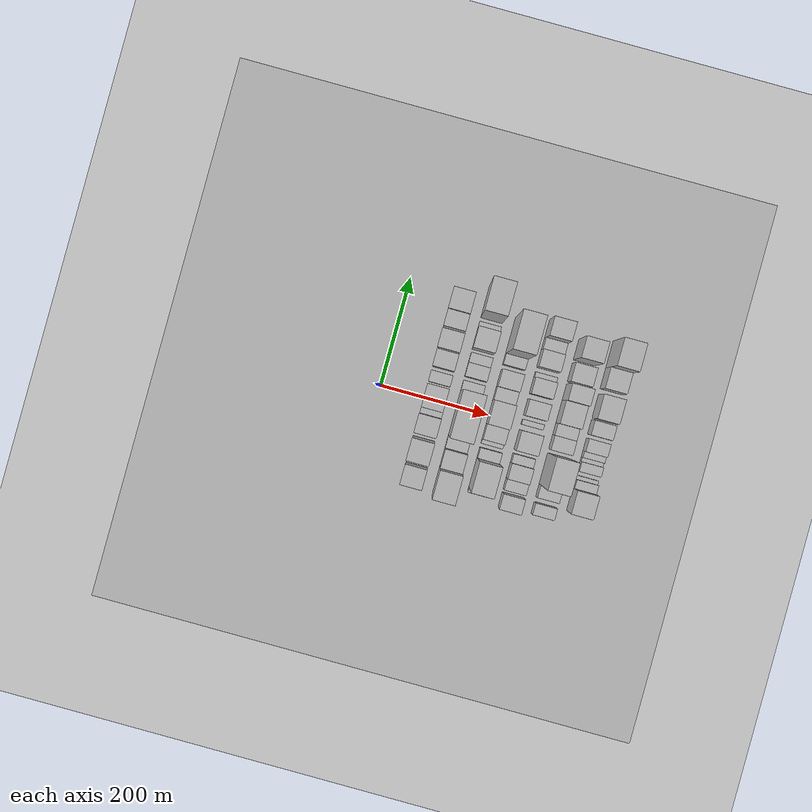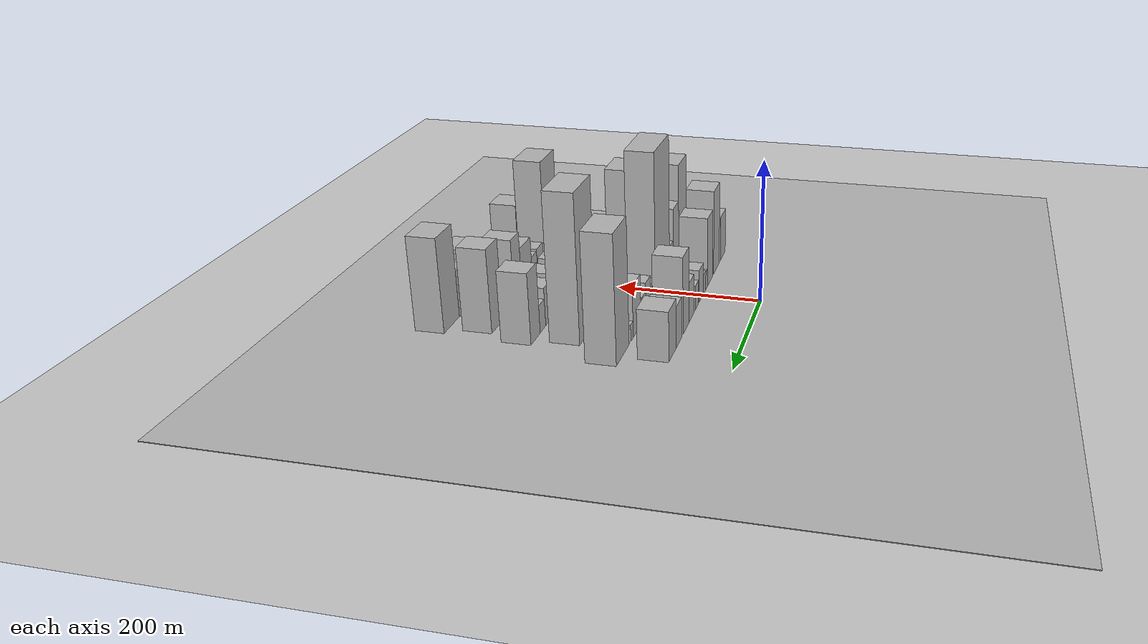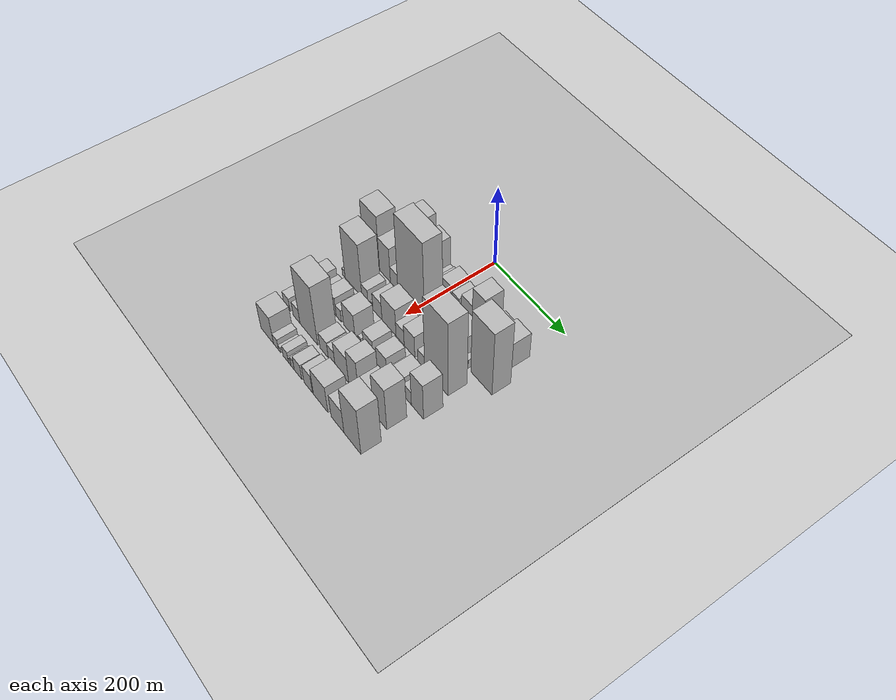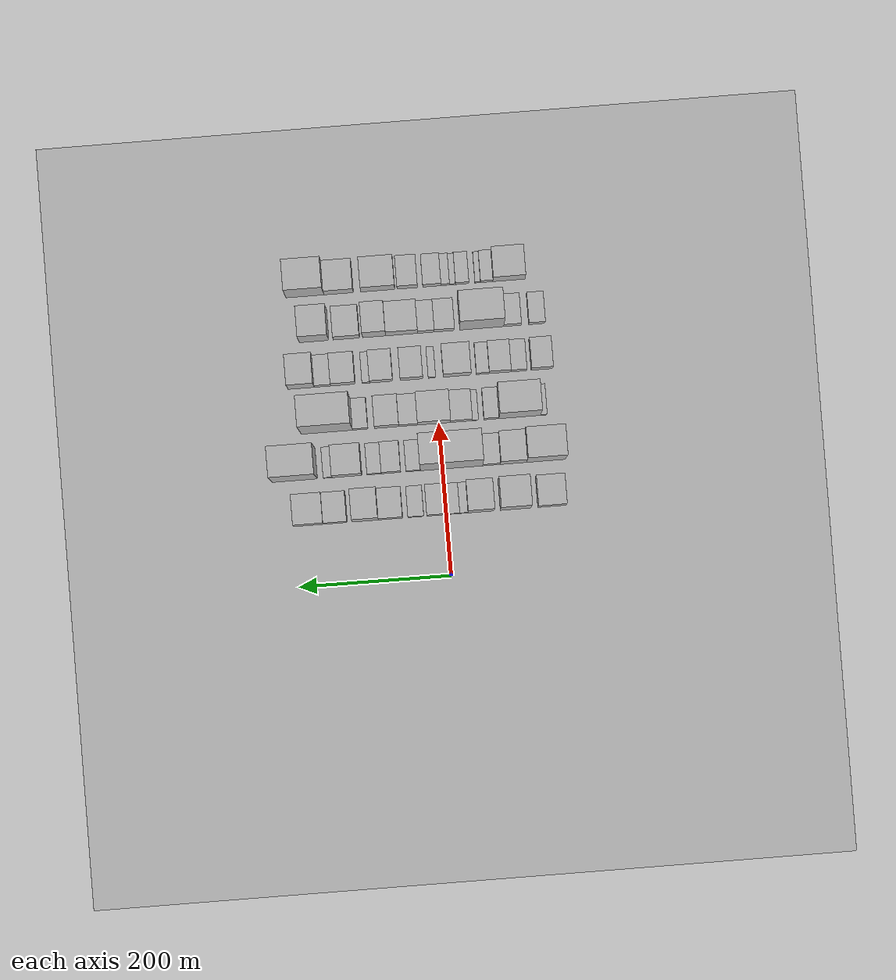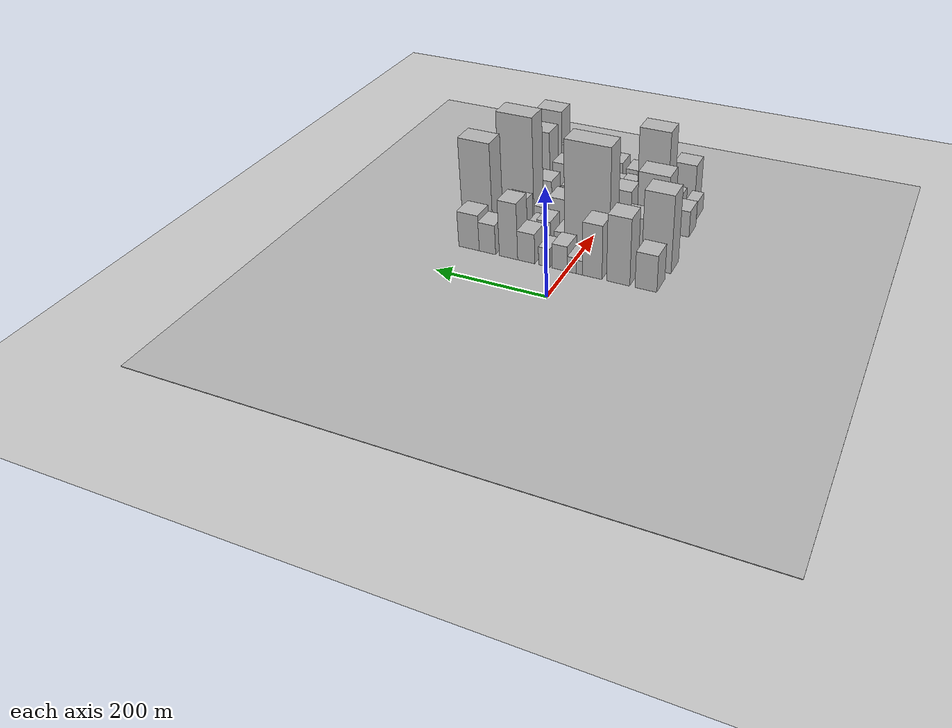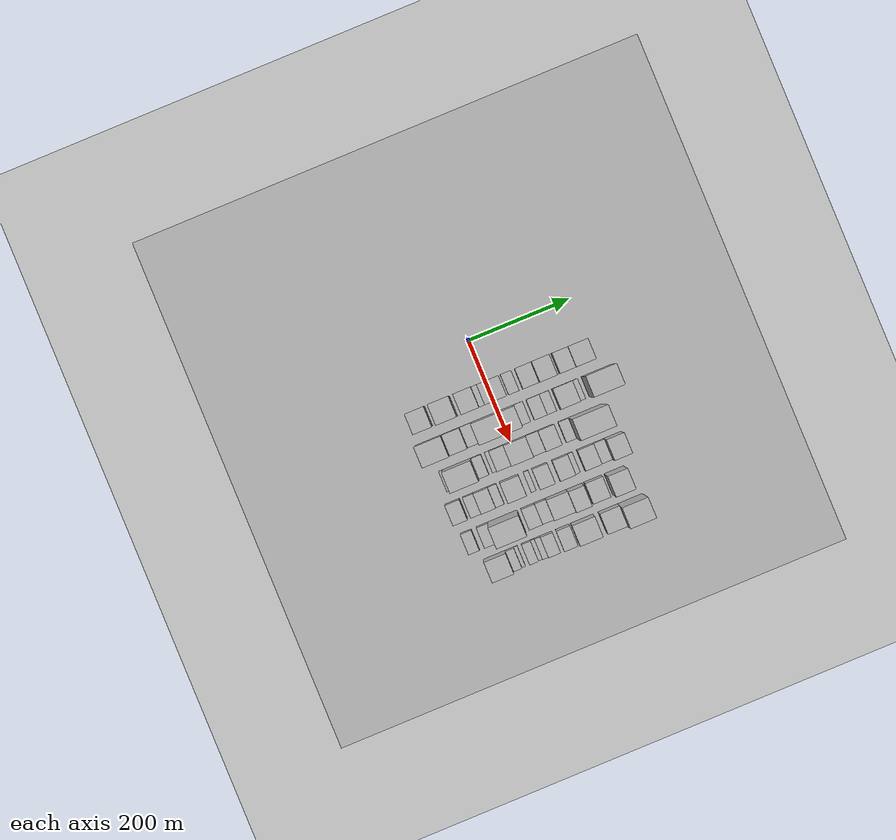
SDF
<sdf version="1.6">
 <world name="default">
  <include><name>ground_plane_1</name><uri>model://HANNAS_ground_plane</uri></include>
  <include>
   <name>ground_plane_2</name>
   <uri>model://HANNAS_ground_plane</uri>
   <pose>100 0 0  0 0 0</pose>
  </include>
  <model name="building_28">
   <static>1</static>
   <pose>100.0000 -138.4479 0 0.000000 0.000000 0.000000</pose>
   <link name="link">
    <pose>0 0 34.50 0 0 0</pose>
    <collision name="collision"><geometry><box><size>40.0000 37.1466 69.0000</size></box></geometry></collision>
    <visual name="visual">
     <cast_shadows>0</cast_shadows>
     <geometry><box><size>40.0000 37.1466 69.0000</size></box></geometry>
     <material>
      <script>
       <uri>model://HANNAS_wall/materials/scripts</uri>
       <uri>model://HANNAS_wall/materials/textures</uri>
       <name>vrc/HANNAS_wall</name>
      </script>
     </material>
    </visual>
   </link>
  </model>
  <model name="building_29">
   <static>1</static>
   <pose>100.0000 -90.7545 0 0.000000 0.000000 0.000000</pose>
   <link name="link">
    <pose>0 0 63.00 0 0 0</pose>
    <collision name="collision"><geometry><box><size>40.0000 40.2401 126.0000</size></box></geometry></collision>
    <visual name="visual">
     <cast_shadows>0</cast_shadows>
     <geometry><box><size>40.0000 40.2401 126.0000</size></box></geometry>
     <material>
      <script>
       <uri>model://HANNAS_wall/materials/scripts</uri>
       <uri>model://HANNAS_wall/materials/textures</uri>
       <name>vrc/HANNAS_wall</name>
      </script>
     </material>
    </visual>
   </link>
  </model>
  <model name="building_30">
   <static>1</static>
   <pose>100.0000 -45.3814 0 0.000000 0.000000 0.000000</pose>
   <link name="link">
    <pose>0 0 51.00 0 0 0</pose>
    <collision name="collision"><geometry><box><size>40.0000 34.5061 102.0000</size></box></geometry></collision>
    <visual name="visual">
     <cast_shadows>0</cast_shadows>
     <geometry><box><size>40.0000 34.5061 102.0000</size></box></geometry>
     <material>
      <script>
       <uri>model://HANNAS_wall/materials/scripts</uri>
       <uri>model://HANNAS_wall/materials/textures</uri>
       <name>vrc/HANNAS_wall</name>
      </script>
     </material>
    </visual>
   </link>
  </model>
  <model name="building_31">
   <static>1</static>
   <pose>100.0000 -22.7238 0 0.000000 0.000000 0.000000</pose>
   <link name="link">
    <pose>0 0 13.50 0 0 0</pose>
    <collision name="collision"><geometry><box><size>40.0000 10.8093 27.0000</size></box></geometry></collision>
    <visual name="visual">
     <cast_shadows>0</cast_shadows>
     <geometry><box><size>40.0000 10.8093 27.0000</size></box></geometry>
     <material>
      <script>
       <uri>model://HANNAS_wall/materials/scripts</uri>
       <uri>model://HANNAS_wall/materials/textures</uri>
       <name>vrc/HANNAS_wall</name>
      </script>
     </material>
    </visual>
   </link>
  </model>
  <model name="building_32">
   <static>1</static>
   <pose>100.0000 -9.4196 0 0.000000 0.000000 0.000000</pose>
   <link name="link">
    <pose>0 0 15.00 0 0 0</pose>
    <collision name="collision"><geometry><box><size>40.0000 15.7991 30.0000</size></box></geometry></collision>
    <visual name="visual">
     <cast_shadows>0</cast_shadows>
     <geometry><box><size>40.0000 15.7991 30.0000</size></box></geometry>
     <material>
      <script>
       <uri>model://HANNAS_wall/materials/scripts</uri>
       <uri>model://HANNAS_wall/materials/textures</uri>
       <name>vrc/HANNAS_wall</name>
      </script>
     </material>
    </visual>
   </link>
  </model>
  <model name="building_33">
   <static>1</static>
   <pose>100.0000 12.1515 0 0.000000 0.000000 0.000000</pose>
   <link name="link">
    <pose>0 0 24.00 0 0 0</pose>
    <collision name="collision"><geometry><box><size>40.0000 27.3430 48.0000</size></box></geometry></collision>
    <visual name="visual">
     <cast_shadows>0</cast_shadows>
     <geometry><box><size>40.0000 27.3430 48.0000</size></box></geometry>
     <material>
      <script>
       <uri>model://HANNAS_wall/materials/scripts</uri>
       <uri>model://HANNAS_wall/materials/textures</uri>
       <name>vrc/HANNAS_wall</name>
      </script>
     </material>
    </visual>
   </link>
  </model>
  <model name="building_34">
   <static>1</static>
   <pose>100.0000 40.2067 0 0.000000 0.000000 0.000000</pose>
   <link name="link">
    <pose>0 0 18.00 0 0 0</pose>
    <collision name="collision"><geometry><box><size>40.0000 20.7675 36.0000</size></box></geometry></collision>
    <visual name="visual">
     <cast_shadows>0</cast_shadows>
     <geometry><box><size>40.0000 20.7675 36.0000</size></box></geometry>
     <material>
      <script>
       <uri>model://HANNAS_wall/materials/scripts</uri>
       <uri>model://HANNAS_wall/materials/textures</uri>
       <name>vrc/HANNAS_wall</name>
      </script>
     </material>
    </visual>
   </link>
  </model>
  <model name="building_35">
   <static>1</static>
   <pose>100.0000 73.3706 0 0.000000 0.000000 0.000000</pose>
   <link name="link">
    <pose>0 0 28.50 0 0 0</pose>
    <collision name="collision"><geometry><box><size>40.0000 31.5603 57.0000</size></box></geometry></collision>
    <visual name="visual">
     <cast_shadows>0</cast_shadows>
     <geometry><box><size>40.0000 31.5603 57.0000</size></box></geometry>
     <material>
      <script>
       <uri>model://HANNAS_wall/materials/scripts</uri>
       <uri>model://HANNAS_wall/materials/textures</uri>
       <name>vrc/HANNAS_wall</name>
      </script>
     </material>
    </visual>
   </link>
  </model>
  <model name="building_36">
   <static>1</static>
   <pose>100.0000 106.2150 0 0.000000 0.000000 0.000000</pose>
   <link name="link">
    <pose>0 0 54.00 0 0 0</pose>
    <collision name="collision"><geometry><box><size>40.0000 34.1284 108.0000</size></box></geometry></collision>
    <visual name="visual">
     <cast_shadows>0</cast_shadows>
     <geometry><box><size>40.0000 34.1284 108.0000</size></box></geometry>
     <material>
      <script>
       <uri>model://HANNAS_wall/materials/scripts</uri>
       <uri>model://HANNAS_wall/materials/textures</uri>
       <name>vrc/HANNAS_wall</name>
      </script>
     </material>
    </visual>
   </link>
  </model>
  <model name="building_37">
   <static>1</static>
   <pose>100.0000 145.7247 0 0.000000 0.000000 0.000000</pose>
   <link name="link">
    <pose>0 0 28.50 0 0 0</pose>
    <collision name="collision"><geometry><box><size>40.0000 30.8910 57.0000</size></box></geometry></collision>
    <visual name="visual">
     <cast_shadows>0</cast_shadows>
     <geometry><box><size>40.0000 30.8910 57.0000</size></box></geometry>
     <material>
      <script>
       <uri>model://HANNAS_wall/materials/scripts</uri>
       <uri>model://HANNAS_wall/materials/textures</uri>
       <name>vrc/HANNAS_wall</name>
      </script>
     </material>
    </visual>
   </link>
  </model>
  <model name="building_38">
   <static>1</static>
   <pose>100.0000 180.6867 0 0.000000 0.000000 0.000000</pose>
   <link name="link">
    <pose>0 0 34.50 0 0 0</pose>
    <collision name="collision"><geometry><box><size>40.0000 39.0329 69.0000</size></box></geometry></collision>
    <visual name="visual">
     <cast_shadows>0</cast_shadows>
     <geometry><box><size>40.0000 39.0329 69.0000</size></box></geometry>
     <material>
      <script>
       <uri>model://HANNAS_wall/materials/scripts</uri>
       <uri>model://HANNAS_wall/materials/textures</uri>
       <name>vrc/HANNAS_wall</name>
      </script>
     </material>
    </visual>
   </link>
  </model>
  <model name="building_86">
   <static>1</static>
   <pose>160.0000 -135.2525 0 0.000000 0.000000 0.000000</pose>
   <link name="link">
    <pose>0 0 73.50 0 0 0</pose>
    <collision name="collision"><geometry><box><size>40.0000 51.1075 147.0000</size></box></geometry></collision>
    <visual name="visual">
     <cast_shadows>0</cast_shadows>
     <geometry><box><size>40.0000 51.1075 147.0000</size></box></geometry>
     <material>
      <script>
       <uri>model://HANNAS_wall/materials/scripts</uri>
       <uri>model://HANNAS_wall/materials/textures</uri>
       <name>vrc/HANNAS_wall</name>
      </script>
     </material>
    </visual>
   </link>
  </model>
  <model name="building_87">
   <static>1</static>
   <pose>160.0000 -92.5547 0 0.000000 0.000000 0.000000</pose>
   <link name="link">
    <pose>0 0 46.50 0 0 0</pose>
    <collision name="collision"><geometry><box><size>40.0000 34.2880 93.0000</size></box></geometry></collision>
    <visual name="visual">
     <cast_shadows>0</cast_shadows>
     <geometry><box><size>40.0000 34.2880 93.0000</size></box></geometry>
     <material>
      <script>
       <uri>model://HANNAS_wall/materials/scripts</uri>
       <uri>model://HANNAS_wall/materials/textures</uri>
       <name>vrc/HANNAS_wall</name>
      </script>
     </material>
    </visual>
   </link>
  </model>
  <model name="building_88">
   <static>1</static>
   <pose>160.0000 -63.7799 0 0.000000 0.000000 0.000000</pose>
   <link name="link">
    <pose>0 0 22.50 0 0 0</pose>
    <collision name="collision"><geometry><box><size>40.0000 23.2616 45.0000</size></box></geometry></collision>
    <visual name="visual">
     <cast_shadows>0</cast_shadows>
     <geometry><box><size>40.0000 23.2616 45.0000</size></box></geometry>
     <material>
      <script>
       <uri>model://HANNAS_wall/materials/scripts</uri>
       <uri>model://HANNAS_wall/materials/textures</uri>
       <name>vrc/HANNAS_wall</name>
      </script>
     </material>
    </visual>
   </link>
  </model>
  <model name="building_89">
   <static>1</static>
   <pose>160.0000 -11.2617 0 0.000000 0.000000 0.000000</pose>
   <link name="link">
    <pose>0 0 105.00 0 0 0</pose>
    <collision name="collision"><geometry><box><size>40.0000 81.7748 210.0000</size></box></geometry></collision>
    <visual name="visual">
     <cast_shadows>0</cast_shadows>
     <geometry><box><size>40.0000 81.7748 210.0000</size></box></geometry>
     <material>
      <script>
       <uri>model://HANNAS_wall/materials/scripts</uri>
       <uri>model://HANNAS_wall/materials/textures</uri>
       <name>vrc/HANNAS_wall</name>
      </script>
     </material>
    </visual>
   </link>
  </model>
  <model name="building_90">
   <static>1</static>
   <pose>160.0000 39.0484 0 0.000000 0.000000 0.000000</pose>
   <link name="link">
    <pose>0 0 16.50 0 0 0</pose>
    <collision name="collision"><geometry><box><size>40.0000 18.8454 33.0000</size></box></geometry></collision>
    <visual name="visual">
     <cast_shadows>0</cast_shadows>
     <geometry><box><size>40.0000 18.8454 33.0000</size></box></geometry>
     <material>
      <script>
       <uri>model://HANNAS_wall/materials/scripts</uri>
       <uri>model://HANNAS_wall/materials/textures</uri>
       <name>vrc/HANNAS_wall</name>
      </script>
     </material>
    </visual>
   </link>
  </model>
  <model name="building_91">
   <static>1</static>
   <pose>160.0000 68.0757 0 0.000000 0.000000 0.000000</pose>
   <link name="link">
    <pose>0 0 24.00 0 0 0</pose>
    <collision name="collision"><geometry><box><size>40.0000 25.2090 48.0000</size></box></geometry></collision>
    <visual name="visual">
     <cast_shadows>0</cast_shadows>
     <geometry><box><size>40.0000 25.2090 48.0000</size></box></geometry>
     <material>
      <script>
       <uri>model://HANNAS_wall/materials/scripts</uri>
       <uri>model://HANNAS_wall/materials/textures</uri>
       <name>vrc/HANNAS_wall</name>
      </script>
     </material>
    </visual>
   </link>
  </model>
  <model name="building_92">
   <static>1</static>
   <pose>160.0000 90.0440 0 0.000000 0.000000 0.000000</pose>
   <link name="link">
    <pose>0 0 18.00 0 0 0</pose>
    <collision name="collision"><geometry><box><size>40.0000 18.7275 36.0000</size></box></geometry></collision>
    <visual name="visual">
     <cast_shadows>0</cast_shadows>
     <geometry><box><size>40.0000 18.7275 36.0000</size></box></geometry>
     <material>
      <script>
       <uri>model://HANNAS_wall/materials/scripts</uri>
       <uri>model://HANNAS_wall/materials/textures</uri>
       <name>vrc/HANNAS_wall</name>
      </script>
     </material>
    </visual>
   </link>
  </model>
  <model name="building_93">
   <static>1</static>
   <pose>160.0000 125.8068 0 0.000000 0.000000 0.000000</pose>
   <link name="link">
    <pose>0 0 36.00 0 0 0</pose>
    <collision name="collision"><geometry><box><size>40.0000 38.7981 72.0000</size></box></geometry></collision>
    <visual name="visual">
     <cast_shadows>0</cast_shadows>
     <geometry><box><size>40.0000 38.7981 72.0000</size></box></geometry>
     <material>
      <script>
       <uri>model://HANNAS_wall/materials/scripts</uri>
       <uri>model://HANNAS_wall/materials/textures</uri>
       <name>vrc/HANNAS_wall</name>
      </script>
     </material>
    </visual>
   </link>
  </model>
  <model name="building_94">
   <static>1</static>
   <pose>160.0000 151.0889 0 0.000000 0.000000 0.000000</pose>
   <link name="link">
    <pose>0 0 12.00 0 0 0</pose>
    <collision name="collision"><geometry><box><size>40.0000 11.7660 24.0000</size></box></geometry></collision>
    <visual name="visual">
     <cast_shadows>0</cast_shadows>
     <geometry><box><size>40.0000 11.7660 24.0000</size></box></geometry>
     <material>
      <script>
       <uri>model://HANNAS_wall/materials/scripts</uri>
       <uri>model://HANNAS_wall/materials/textures</uri>
       <name>vrc/HANNAS_wall</name>
      </script>
     </material>
    </visual>
   </link>
  </model>
  <model name="building_95">
   <static>1</static>
   <pose>160.0000 194.3535 0 0.000000 0.000000 0.000000</pose>
   <link name="link">
    <pose>0 0 87.00 0 0 0</pose>
    <collision name="collision"><geometry><box><size>40.0000 58.7632 174.0000</size></box></geometry></collision>
    <visual name="visual">
     <cast_shadows>0</cast_shadows>
     <geometry><box><size>40.0000 58.7632 174.0000</size></box></geometry>
     <material>
      <script>
       <uri>model://HANNAS_wall/materials/scripts</uri>
       <uri>model://HANNAS_wall/materials/textures</uri>
       <name>vrc/HANNAS_wall</name>
      </script>
     </material>
    </visual>
   </link>
  </model>
  <model name="building_138">
   <static>1</static>
   <pose>220.0000 -137.1860 0 0.000000 0.000000 0.000000</pose>
   <link name="link">
    <pose>0 0 10.50 0 0 0</pose>
    <collision name="collision"><geometry><box><size>40.0000 8.5408 21.0000</size></box></geometry></collision>
    <visual name="visual">
     <cast_shadows>0</cast_shadows>
     <geometry><box><size>40.0000 8.5408 21.0000</size></box></geometry>
     <material>
      <script>
       <uri>model://HANNAS_wall/materials/scripts</uri>
       <uri>model://HANNAS_wall/materials/textures</uri>
       <name>vrc/HANNAS_wall</name>
      </script>
     </material>
    </visual>
   </link>
  </model>
  <model name="building_139">
   <static>1</static>
   <pose>220.0000 -105.5557 0 0.000000 0.000000 0.000000</pose>
   <link name="link">
    <pose>0 0 72.00 0 0 0</pose>
    <collision name="collision"><geometry><box><size>40.0000 54.7197 144.0000</size></box></geometry></collision>
    <visual name="visual">
     <cast_shadows>0</cast_shadows>
     <geometry><box><size>40.0000 54.7197 144.0000</size></box></geometry>
     <material>
      <script>
       <uri>model://HANNAS_wall/materials/scripts</uri>
       <uri>model://HANNAS_wall/materials/textures</uri>
       <name>vrc/HANNAS_wall</name>
      </script>
     </material>
    </visual>
   </link>
  </model>
  <model name="building_140">
   <static>1</static>
   <pose>220.0000 -68.3398 0 0.000000 0.000000 0.000000</pose>
   <link name="link">
    <pose>0 0 19.50 0 0 0</pose>
    <collision name="collision"><geometry><box><size>40.0000 19.7121 39.0000</size></box></geometry></collision>
    <visual name="visual">
     <cast_shadows>0</cast_shadows>
     <geometry><box><size>40.0000 19.7121 39.0000</size></box></geometry>
     <material>
      <script>
       <uri>model://HANNAS_wall/materials/scripts</uri>
       <uri>model://HANNAS_wall/materials/textures</uri>
       <name>vrc/HANNAS_wall</name>
      </script>
     </material>
    </visual>
   </link>
  </model>
  <model name="building_141">
   <static>1</static>
   <pose>220.0000 -47.3592 0 0.000000 0.000000 0.000000</pose>
   <link name="link">
    <pose>0 0 9.00 0 0 0</pose>
    <collision name="collision"><geometry><box><size>40.0000 8.2490 18.0000</size></box></geometry></collision>
    <visual name="visual">
     <cast_shadows>0</cast_shadows>
     <geometry><box><size>40.0000 8.2490 18.0000</size></box></geometry>
     <material>
      <script>
       <uri>model://HANNAS_wall/materials/scripts</uri>
       <uri>model://HANNAS_wall/materials/textures</uri>
       <name>vrc/HANNAS_wall</name>
      </script>
     </material>
    </visual>
   </link>
  </model>
  <model name="building_142">
   <static>1</static>
   <pose>220.0000 -29.0411 0 0.000000 0.000000 0.000000</pose>
   <link name="link">
    <pose>0 0 24.00 0 0 0</pose>
    <collision name="collision"><geometry><box><size>40.0000 28.3872 48.0000</size></box></geometry></collision>
    <visual name="visual">
     <cast_shadows>0</cast_shadows>
     <geometry><box><size>40.0000 28.3872 48.0000</size></box></geometry>
     <material>
      <script>
       <uri>model://HANNAS_wall/materials/scripts</uri>
       <uri>model://HANNAS_wall/materials/textures</uri>
       <name>vrc/HANNAS_wall</name>
      </script>
     </material>
    </visual>
   </link>
  </model>
  <model name="building_143">
   <static>1</static>
   <pose>220.0000 6.8665 0 0.000000 0.000000 0.000000</pose>
   <link name="link">
    <pose>0 0 37.50 0 0 0</pose>
    <collision name="collision"><geometry><box><size>40.0000 43.4281 75.0000</size></box></geometry></collision>
    <visual name="visual">
     <cast_shadows>0</cast_shadows>
     <geometry><box><size>40.0000 43.4281 75.0000</size></box></geometry>
     <material>
      <script>
       <uri>model://HANNAS_wall/materials/scripts</uri>
       <uri>model://HANNAS_wall/materials/textures</uri>
       <name>vrc/HANNAS_wall</name>
      </script>
     </material>
    </visual>
   </link>
  </model>
  <model name="building_144">
   <static>1</static>
   <pose>220.0000 40.8309 0 0.000000 0.000000 0.000000</pose>
   <link name="link">
    <pose>0 0 21.00 0 0 0</pose>
    <collision name="collision"><geometry><box><size>40.0000 24.5007 42.0000</size></box></geometry></collision>
    <visual name="visual">
     <cast_shadows>0</cast_shadows>
     <geometry><box><size>40.0000 24.5007 42.0000</size></box></geometry>
     <material>
      <script>
       <uri>model://HANNAS_wall/materials/scripts</uri>
       <uri>model://HANNAS_wall/materials/textures</uri>
       <name>vrc/HANNAS_wall</name>
      </script>
     </material>
    </visual>
   </link>
  </model>
  <model name="building_145">
   <static>1</static>
   <pose>220.0000 68.9555 0 0.000000 0.000000 0.000000</pose>
   <link name="link">
    <pose>0 0 30.00 0 0 0</pose>
    <collision name="collision"><geometry><box><size>40.0000 31.7485 60.0000</size></box></geometry></collision>
    <visual name="visual">
     <cast_shadows>0</cast_shadows>
     <geometry><box><size>40.0000 31.7485 60.0000</size></box></geometry>
     <material>
      <script>
       <uri>model://HANNAS_wall/materials/scripts</uri>
       <uri>model://HANNAS_wall/materials/textures</uri>
       <name>vrc/HANNAS_wall</name>
      </script>
     </material>
    </visual>
   </link>
  </model>
  <model name="building_146">
   <static>1</static>
   <pose>220.0000 103.7662 0 0.000000 0.000000 0.000000</pose>
   <link name="link">
    <pose>0 0 18.00 0 0 0</pose>
    <collision name="collision"><geometry><box><size>40.0000 19.8728 36.0000</size></box></geometry></collision>
    <visual name="visual">
     <cast_shadows>0</cast_shadows>
     <geometry><box><size>40.0000 19.8728 36.0000</size></box></geometry>
     <material>
      <script>
       <uri>model://HANNAS_wall/materials/scripts</uri>
       <uri>model://HANNAS_wall/materials/textures</uri>
       <name>vrc/HANNAS_wall</name>
      </script>
     </material>
    </visual>
   </link>
  </model>
  <model name="building_147">
   <static>1</static>
   <pose>220.0000 147.4147 0 0.000000 0.000000 0.000000</pose>
   <link name="link">
    <pose>0 0 102.00 0 0 0</pose>
    <collision name="collision"><geometry><box><size>40.0000 67.4244 204.0000</size></box></geometry></collision>
    <visual name="visual">
     <cast_shadows>0</cast_shadows>
     <geometry><box><size>40.0000 67.4244 204.0000</size></box></geometry>
     <material>
      <script>
       <uri>model://HANNAS_wall/materials/scripts</uri>
       <uri>model://HANNAS_wall/materials/textures</uri>
       <name>vrc/HANNAS_wall</name>
      </script>
     </material>
    </visual>
   </link>
  </model>
  <model name="building_187">
   <static>1</static>
   <pose>280.0000 -139.5482 0 0.000000 0.000000 0.000000</pose>
   <link name="link">
    <pose>0 0 25.50 0 0 0</pose>
    <collision name="collision"><geometry><box><size>40.0000 28.2880 51.0000</size></box></geometry></collision>
    <visual name="visual">
     <cast_shadows>0</cast_shadows>
     <geometry><box><size>40.0000 28.2880 51.0000</size></box></geometry>
     <material>
      <script>
       <uri>model://HANNAS_wall/materials/scripts</uri>
       <uri>model://HANNAS_wall/materials/textures</uri>
       <name>vrc/HANNAS_wall</name>
      </script>
     </material>
    </visual>
   </link>
  </model>
  <model name="building_188">
   <static>1</static>
   <pose>280.0000 -109.0311 0 0.000000 0.000000 0.000000</pose>
   <link name="link">
    <pose>0 0 19.50 0 0 0</pose>
    <collision name="collision"><geometry><box><size>40.0000 20.7461 39.0000</size></box></geometry></collision>
    <visual name="visual">
     <cast_shadows>0</cast_shadows>
     <geometry><box><size>40.0000 20.7461 39.0000</size></box></geometry>
     <material>
      <script>
       <uri>model://HANNAS_wall/materials/scripts</uri>
       <uri>model://HANNAS_wall/materials/textures</uri>
       <name>vrc/HANNAS_wall</name>
      </script>
     </material>
    </visual>
   </link>
  </model>
  <model name="building_189">
   <static>1</static>
   <pose>280.0000 -84.3676 0 0.000000 0.000000 0.000000</pose>
   <link name="link">
    <pose>0 0 25.50 0 0 0</pose>
    <collision name="collision"><geometry><box><size>40.0000 28.5811 51.0000</size></box></geometry></collision>
    <visual name="visual">
     <cast_shadows>0</cast_shadows>
     <geometry><box><size>40.0000 28.5811 51.0000</size></box></geometry>
     <material>
      <script>
       <uri>model://HANNAS_wall/materials/scripts</uri>
       <uri>model://HANNAS_wall/materials/textures</uri>
       <name>vrc/HANNAS_wall</name>
      </script>
     </material>
    </visual>
   </link>
  </model>
  <model name="building_190">
   <static>1</static>
   <pose>280.0000 -61.6825 0 0.000000 0.000000 0.000000</pose>
   <link name="link">
    <pose>0 0 16.50 0 0 0</pose>
    <collision name="collision"><geometry><box><size>40.0000 16.7892 33.0000</size></box></geometry></collision>
    <visual name="visual">
     <cast_shadows>0</cast_shadows>
     <geometry><box><size>40.0000 16.7892 33.0000</size></box></geometry>
     <material>
      <script>
       <uri>model://HANNAS_wall/materials/scripts</uri>
       <uri>model://HANNAS_wall/materials/textures</uri>
       <name>vrc/HANNAS_wall</name>
      </script>
     </material>
    </visual>
   </link>
  </model>
  <model name="building_191">
   <static>1</static>
   <pose>280.0000 -28.0726 0 0.000000 0.000000 0.000000</pose>
   <link name="link">
    <pose>0 0 33.00 0 0 0</pose>
    <collision name="collision"><geometry><box><size>40.0000 36.4304 66.0000</size></box></geometry></collision>
    <visual name="visual">
     <cast_shadows>0</cast_shadows>
     <geometry><box><size>40.0000 36.4304 66.0000</size></box></geometry>
     <material>
      <script>
       <uri>model://HANNAS_wall/materials/scripts</uri>
       <uri>model://HANNAS_wall/materials/textures</uri>
       <name>vrc/HANNAS_wall</name>
      </script>
     </material>
    </visual>
   </link>
  </model>
  <model name="building_192">
   <static>1</static>
   <pose>280.0000 5.0324 0 0.000000 0.000000 0.000000</pose>
   <link name="link">
    <pose>0 0 10.50 0 0 0</pose>
    <collision name="collision"><geometry><box><size>40.0000 9.7797 21.0000</size></box></geometry></collision>
    <visual name="visual">
     <cast_shadows>0</cast_shadows>
     <geometry><box><size>40.0000 9.7797 21.0000</size></box></geometry>
     <material>
      <script>
       <uri>model://HANNAS_wall/materials/scripts</uri>
       <uri>model://HANNAS_wall/materials/textures</uri>
       <name>vrc/HANNAS_wall</name>
      </script>
     </material>
    </visual>
   </link>
  </model>
  <model name="building_193">
   <static>1</static>
   <pose>280.0000 31.7453 0 0.000000 0.000000 0.000000</pose>
   <link name="link">
    <pose>0 0 27.00 0 0 0</pose>
    <collision name="collision"><geometry><box><size>40.0000 29.6462 54.0000</size></box></geometry></collision>
    <visual name="visual">
     <cast_shadows>0</cast_shadows>
     <geometry><box><size>40.0000 29.6462 54.0000</size></box></geometry>
     <material>
      <script>
       <uri>model://HANNAS_wall/materials/scripts</uri>
       <uri>model://HANNAS_wall/materials/textures</uri>
       <name>vrc/HANNAS_wall</name>
      </script>
     </material>
    </visual>
   </link>
  </model>
  <model name="building_194">
   <static>1</static>
   <pose>280.0000 71.7087 0 0.000000 0.000000 0.000000</pose>
   <link name="link">
    <pose>0 0 25.50 0 0 0</pose>
    <collision name="collision"><geometry><box><size>40.0000 30.2806 51.0000</size></box></geometry></collision>
    <visual name="visual">
     <cast_shadows>0</cast_shadows>
     <geometry><box><size>40.0000 30.2806 51.0000</size></box></geometry>
     <material>
      <script>
       <uri>model://HANNAS_wall/materials/scripts</uri>
       <uri>model://HANNAS_wall/materials/textures</uri>
       <name>vrc/HANNAS_wall</name>
      </script>
     </material>
    </visual>
   </link>
  </model>
  <model name="building_195">
   <static>1</static>
   <pose>280.0000 91.8121 0 0.000000 0.000000 0.000000</pose>
   <link name="link">
    <pose>0 0 12.00 0 0 0</pose>
    <collision name="collision"><geometry><box><size>40.0000 9.9261 24.0000</size></box></geometry></collision>
    <visual name="visual">
     <cast_shadows>0</cast_shadows>
     <geometry><box><size>40.0000 9.9261 24.0000</size></box></geometry>
     <material>
      <script>
       <uri>model://HANNAS_wall/materials/scripts</uri>
       <uri>model://HANNAS_wall/materials/textures</uri>
       <name>vrc/HANNAS_wall</name>
      </script>
     </material>
    </visual>
   </link>
  </model>
  <model name="building_196">
   <static>1</static>
   <pose>280.0000 121.7684 0 0.000000 0.000000 0.000000</pose>
   <link name="link">
    <pose>0 0 27.00 0 0 0</pose>
    <collision name="collision"><geometry><box><size>40.0000 31.9866 54.0000</size></box></geometry></collision>
    <visual name="visual">
     <cast_shadows>0</cast_shadows>
     <geometry><box><size>40.0000 31.9866 54.0000</size></box></geometry>
     <material>
      <script>
       <uri>model://HANNAS_wall/materials/scripts</uri>
       <uri>model://HANNAS_wall/materials/textures</uri>
       <name>vrc/HANNAS_wall</name>
      </script>
     </material>
    </visual>
   </link>
  </model>
  <model name="building_197">
   <static>1</static>
   <pose>280.0000 148.5309 0 0.000000 0.000000 0.000000</pose>
   <link name="link">
    <pose>0 0 19.50 0 0 0</pose>
    <collision name="collision"><geometry><box><size>40.0000 21.5385 39.0000</size></box></geometry></collision>
    <visual name="visual">
     <cast_shadows>0</cast_shadows>
     <geometry><box><size>40.0000 21.5385 39.0000</size></box></geometry>
     <material>
      <script>
       <uri>model://HANNAS_wall/materials/scripts</uri>
       <uri>model://HANNAS_wall/materials/textures</uri>
       <name>vrc/HANNAS_wall</name>
      </script>
     </material>
    </visual>
   </link>
  </model>
  <model name="building_198">
   <static>1</static>
   <pose>280.0000 176.6526 0 0.000000 0.000000 0.000000</pose>
   <link name="link">
    <pose>0 0 49.50 0 0 0</pose>
    <collision name="collision"><geometry><box><size>40.0000 34.7049 99.0000</size></box></geometry></collision>
    <visual name="visual">
     <cast_shadows>0</cast_shadows>
     <geometry><box><size>40.0000 34.7049 99.0000</size></box></geometry>
     <material>
      <script>
       <uri>model://HANNAS_wall/materials/scripts</uri>
       <uri>model://HANNAS_wall/materials/textures</uri>
       <name>vrc/HANNAS_wall</name>
      </script>
     </material>
    </visual>
   </link>
  </model>
  <model name="building_240">
   <static>1</static>
   <pose>340.0000 -137.6462 0 0.000000 0.000000 0.000000</pose>
   <link name="link">
    <pose>0 0 18.00 0 0 0</pose>
    <collision name="collision"><geometry><box><size>40.0000 21.4775 36.0000</size></box></geometry></collision>
    <visual name="visual">
     <cast_shadows>0</cast_shadows>
     <geometry><box><size>40.0000 21.4775 36.0000</size></box></geometry>
     <material>
      <script>
       <uri>model://HANNAS_wall/materials/scripts</uri>
       <uri>model://HANNAS_wall/materials/textures</uri>
       <name>vrc/HANNAS_wall</name>
      </script>
     </material>
    </visual>
   </link>
  </model>
  <model name="building_241">
   <static>1</static>
   <pose>340.0000 -105.4870 0 0.000000 0.000000 0.000000</pose>
   <link name="link">
    <pose>0 0 19.50 0 0 0</pose>
    <collision name="collision"><geometry><box><size>40.0000 22.8408 39.0000</size></box></geometry></collision>
    <visual name="visual">
     <cast_shadows>0</cast_shadows>
     <geometry><box><size>40.0000 22.8408 39.0000</size></box></geometry>
     <material>
      <script>
       <uri>model://HANNAS_wall/materials/scripts</uri>
       <uri>model://HANNAS_wall/materials/textures</uri>
       <name>vrc/HANNAS_wall</name>
      </script>
     </material>
    </visual>
   </link>
  </model>
  <model name="building_242">
   <static>1</static>
   <pose>340.0000 -65.1874 0 0.000000 0.000000 0.000000</pose>
   <link name="link">
    <pose>0 0 81.00 0 0 0</pose>
    <collision name="collision"><geometry><box><size>40.0000 57.7582 162.0000</size></box></geometry></collision>
    <visual name="visual">
     <cast_shadows>0</cast_shadows>
     <geometry><box><size>40.0000 57.7582 162.0000</size></box></geometry>
     <material>
      <script>
       <uri>model://HANNAS_wall/materials/scripts</uri>
       <uri>model://HANNAS_wall/materials/textures</uri>
       <name>vrc/HANNAS_wall</name>
      </script>
     </material>
    </visual>
   </link>
  </model>
  <model name="building_243">
   <static>1</static>
   <pose>340.0000 -16.0661 0 0.000000 0.000000 0.000000</pose>
   <link name="link">
    <pose>0 0 22.50 0 0 0</pose>
    <collision name="collision"><geometry><box><size>40.0000 26.4844 45.0000</size></box></geometry></collision>
    <visual name="visual">
     <cast_shadows>0</cast_shadows>
     <geometry><box><size>40.0000 26.4844 45.0000</size></box></geometry>
     <material>
      <script>
       <uri>model://HANNAS_wall/materials/scripts</uri>
       <uri>model://HANNAS_wall/materials/textures</uri>
       <name>vrc/HANNAS_wall</name>
      </script>
     </material>
    </visual>
   </link>
  </model>
  <model name="building_244">
   <static>1</static>
   <pose>340.0000 8.1431 0 0.000000 0.000000 0.000000</pose>
   <link name="link">
    <pose>0 0 21.00 0 0 0</pose>
    <collision name="collision"><geometry><box><size>40.0000 21.9340 42.0000</size></box></geometry></collision>
    <visual name="visual">
     <cast_shadows>0</cast_shadows>
     <geometry><box><size>40.0000 21.9340 42.0000</size></box></geometry>
     <material>
      <script>
       <uri>model://HANNAS_wall/materials/scripts</uri>
       <uri>model://HANNAS_wall/materials/textures</uri>
       <name>vrc/HANNAS_wall</name>
      </script>
     </material>
    </visual>
   </link>
  </model>
  <model name="building_245">
   <static>1</static>
   <pose>340.0000 40.0120 0 0.000000 0.000000 0.000000</pose>
   <link name="link">
    <pose>0 0 36.00 0 0 0</pose>
    <collision name="collision"><geometry><box><size>40.0000 41.8036 72.0000</size></box></geometry></collision>
    <visual name="visual">
     <cast_shadows>0</cast_shadows>
     <geometry><box><size>40.0000 41.8036 72.0000</size></box></geometry>
     <material>
      <script>
       <uri>model://HANNAS_wall/materials/scripts</uri>
       <uri>model://HANNAS_wall/materials/textures</uri>
       <name>vrc/HANNAS_wall</name>
      </script>
     </material>
    </visual>
   </link>
  </model>
  <model name="building_246">
   <static>1</static>
   <pose>340.0000 76.1446 0 0.000000 0.000000 0.000000</pose>
   <link name="link">
    <pose>0 0 48.00 0 0 0</pose>
    <collision name="collision"><geometry><box><size>40.0000 30.4616 96.0000</size></box></geometry></collision>
    <visual name="visual">
     <cast_shadows>0</cast_shadows>
     <geometry><box><size>40.0000 30.4616 96.0000</size></box></geometry>
     <material>
      <script>
       <uri>model://HANNAS_wall/materials/scripts</uri>
       <uri>model://HANNAS_wall/materials/textures</uri>
       <name>vrc/HANNAS_wall</name>
      </script>
     </material>
    </visual>
   </link>
  </model>
  <model name="building_247">
   <static>1</static>
   <pose>340.0000 112.6431 0 0.000000 0.000000 0.000000</pose>
   <link name="link">
    <pose>0 0 30.00 0 0 0</pose>
    <collision name="collision"><geometry><box><size>40.0000 34.5355 60.0000</size></box></geometry></collision>
    <visual name="visual">
     <cast_shadows>0</cast_shadows>
     <geometry><box><size>40.0000 34.5355 60.0000</size></box></geometry>
     <material>
      <script>
       <uri>model://HANNAS_wall/materials/scripts</uri>
       <uri>model://HANNAS_wall/materials/textures</uri>
       <name>vrc/HANNAS_wall</name>
      </script>
     </material>
    </visual>
   </link>
  </model>
  <model name="building_248">
   <static>1</static>
   <pose>340.0000 155.1214 0 0.000000 0.000000 0.000000</pose>
   <link name="link">
    <pose>0 0 58.50 0 0 0</pose>
    <collision name="collision"><geometry><box><size>40.0000 38.4211 117.0000</size></box></geometry></collision>
    <visual name="visual">
     <cast_shadows>0</cast_shadows>
     <geometry><box><size>40.0000 38.4211 117.0000</size></box></geometry>
     <material>
      <script>
       <uri>model://HANNAS_wall/materials/scripts</uri>
       <uri>model://HANNAS_wall/materials/textures</uri>
       <name>vrc/HANNAS_wall</name>
      </script>
     </material>
    </visual>
   </link>
  </model>
  <model name="building_286">
   <static>1</static>
   <pose>400.0000 -105.6823 0 0.000000 0.000000 0.000000</pose>
   <link name="link">
    <pose>0 0 37.50 0 0 0</pose>
    <collision name="collision"><geometry><box><size>40.0000 42.2918 75.0000</size></box></geometry></collision>
    <visual name="visual">
     <cast_shadows>0</cast_shadows>
     <geometry><box><size>40.0000 42.2918 75.0000</size></box></geometry>
     <material>
      <script>
       <uri>model://HANNAS_wall/materials/scripts</uri>
       <uri>model://HANNAS_wall/materials/textures</uri>
       <name>vrc/HANNAS_wall</name>
      </script>
     </material>
    </visual>
   </link>
  </model>
  <model name="building_287">
   <static>1</static>
   <pose>400.0000 -76.3337 0 0.000000 0.000000 0.000000</pose>
   <link name="link">
    <pose>0 0 15.00 0 0 0</pose>
    <collision name="collision"><geometry><box><size>40.0000 16.4054 30.0000</size></box></geometry></collision>
    <visual name="visual">
     <cast_shadows>0</cast_shadows>
     <geometry><box><size>40.0000 16.4054 30.0000</size></box></geometry>
     <material>
      <script>
       <uri>model://HANNAS_wall/materials/scripts</uri>
       <uri>model://HANNAS_wall/materials/textures</uri>
       <name>vrc/HANNAS_wall</name>
      </script>
     </material>
    </visual>
   </link>
  </model>
  <model name="building_288">
   <static>1</static>
   <pose>400.0000 -64.5480 0 0.000000 0.000000 0.000000</pose>
   <link name="link">
    <pose>0 0 7.50 0 0 0</pose>
    <collision name="collision"><geometry><box><size>40.0000 7.1660 15.0000</size></box></geometry></collision>
    <visual name="visual">
     <cast_shadows>0</cast_shadows>
     <geometry><box><size>40.0000 7.1660 15.0000</size></box></geometry>
     <material>
      <script>
       <uri>model://HANNAS_wall/materials/scripts</uri>
       <uri>model://HANNAS_wall/materials/textures</uri>
       <name>vrc/HANNAS_wall</name>
      </script>
     </material>
    </visual>
   </link>
  </model>
  <model name="building_289">
   <static>1</static>
   <pose>400.0000 -44.1342 0 0.000000 0.000000 0.000000</pose>
   <link name="link">
    <pose>0 0 15.00 0 0 0</pose>
    <collision name="collision"><geometry><box><size>40.0000 17.6616 30.0000</size></box></geometry></collision>
    <visual name="visual">
     <cast_shadows>0</cast_shadows>
     <geometry><box><size>40.0000 17.6616 30.0000</size></box></geometry>
     <material>
      <script>
       <uri>model://HANNAS_wall/materials/scripts</uri>
       <uri>model://HANNAS_wall/materials/textures</uri>
       <name>vrc/HANNAS_wall</name>
      </script>
     </material>
    </visual>
   </link>
  </model>
  <model name="building_290">
   <static>1</static>
   <pose>400.0000 -31.4032 0 0.000000 0.000000 0.000000</pose>
   <link name="link">
    <pose>0 0 9.00 0 0 0</pose>
    <collision name="collision"><geometry><box><size>40.0000 7.8005 18.0000</size></box></geometry></collision>
    <visual name="visual">
     <cast_shadows>0</cast_shadows>
     <geometry><box><size>40.0000 7.8005 18.0000</size></box></geometry>
     <material>
      <script>
       <uri>model://HANNAS_wall/materials/scripts</uri>
       <uri>model://HANNAS_wall/materials/textures</uri>
       <name>vrc/HANNAS_wall</name>
      </script>
     </material>
    </visual>
   </link>
  </model>
  <model name="building_291">
   <static>1</static>
   <pose>400.0000 -21.8766 0 0.000000 0.000000 0.000000</pose>
   <link name="link">
    <pose>0 0 13.50 0 0 0</pose>
    <collision name="collision"><geometry><box><size>40.0000 11.2526 27.0000</size></box></geometry></collision>
    <visual name="visual">
     <cast_shadows>0</cast_shadows>
     <geometry><box><size>40.0000 11.2526 27.0000</size></box></geometry>
     <material>
      <script>
       <uri>model://HANNAS_wall/materials/scripts</uri>
       <uri>model://HANNAS_wall/materials/textures</uri>
       <name>vrc/HANNAS_wall</name>
      </script>
     </material>
    </visual>
   </link>
  </model>
  <model name="building_292">
   <static>1</static>
   <pose>400.0000 -4.3041 0 0.000000 0.000000 0.000000</pose>
   <link name="link">
    <pose>0 0 21.00 0 0 0</pose>
    <collision name="collision"><geometry><box><size>40.0000 23.8924 42.0000</size></box></geometry></collision>
    <visual name="visual">
     <cast_shadows>0</cast_shadows>
     <geometry><box><size>40.0000 23.8924 42.0000</size></box></geometry>
     <material>
      <script>
       <uri>model://HANNAS_wall/materials/scripts</uri>
       <uri>model://HANNAS_wall/materials/textures</uri>
       <name>vrc/HANNAS_wall</name>
      </script>
     </material>
    </visual>
   </link>
  </model>
  <model name="building_293">
   <static>1</static>
   <pose>400.0000 28.0477 0 0.000000 0.000000 0.000000</pose>
   <link name="link">
    <pose>0 0 25.50 0 0 0</pose>
    <collision name="collision"><geometry><box><size>40.0000 26.8113 51.0000</size></box></geometry></collision>
    <visual name="visual">
     <cast_shadows>0</cast_shadows>
     <geometry><box><size>40.0000 26.8113 51.0000</size></box></geometry>
     <material>
      <script>
       <uri>model://HANNAS_wall/materials/scripts</uri>
       <uri>model://HANNAS_wall/materials/textures</uri>
       <name>vrc/HANNAS_wall</name>
      </script>
     </material>
    </visual>
   </link>
  </model>
  <model name="building_294">
   <static>1</static>
   <pose>400.0000 66.7169 0 0.000000 0.000000 0.000000</pose>
   <link name="link">
    <pose>0 0 37.50 0 0 0</pose>
    <collision name="collision"><geometry><box><size>40.0000 44.5271 75.0000</size></box></geometry></collision>
    <visual name="visual">
     <cast_shadows>0</cast_shadows>
     <geometry><box><size>40.0000 44.5271 75.0000</size></box></geometry>
     <material>
      <script>
       <uri>model://HANNAS_wall/materials/scripts</uri>
       <uri>model://HANNAS_wall/materials/textures</uri>
       <name>vrc/HANNAS_wall</name>
      </script>
     </material>
    </visual>
   </link>
  </model>
  <model name="building_295">
   <static>1</static>
   <pose>400.0000 118.2791 0 0.000000 0.000000 0.000000</pose>
   <link name="link">
    <pose>0 0 33.00 0 0 0</pose>
    <collision name="collision"><geometry><box><size>40.0000 38.5973 66.0000</size></box></geometry></collision>
    <visual name="visual">
     <cast_shadows>0</cast_shadows>
     <geometry><box><size>40.0000 38.5973 66.0000</size></box></geometry>
     <material>
      <script>
       <uri>model://HANNAS_wall/materials/scripts</uri>
       <uri>model://HANNAS_wall/materials/textures</uri>
       <name>vrc/HANNAS_wall</name>
      </script>
     </material>
    </visual>
   </link>
  </model>
  <model name="building_296">
   <static>1</static>
   <pose>400.0000 162.5048 0 0.000000 0.000000 0.000000</pose>
   <link name="link">
    <pose>0 0 66.00 0 0 0</pose>
    <collision name="collision"><geometry><box><size>40.0000 49.8541 132.0000</size></box></geometry></collision>
    <visual name="visual">
     <cast_shadows>0</cast_shadows>
     <geometry><box><size>40.0000 49.8541 132.0000</size></box></geometry>
     <material>
      <script>
       <uri>model://HANNAS_wall/materials/scripts</uri>
       <uri>model://HANNAS_wall/materials/textures</uri>
       <name>vrc/HANNAS_wall</name>
      </script>
     </material>
    </visual>
   </link>
  </model>
 </world>
</sdf>
